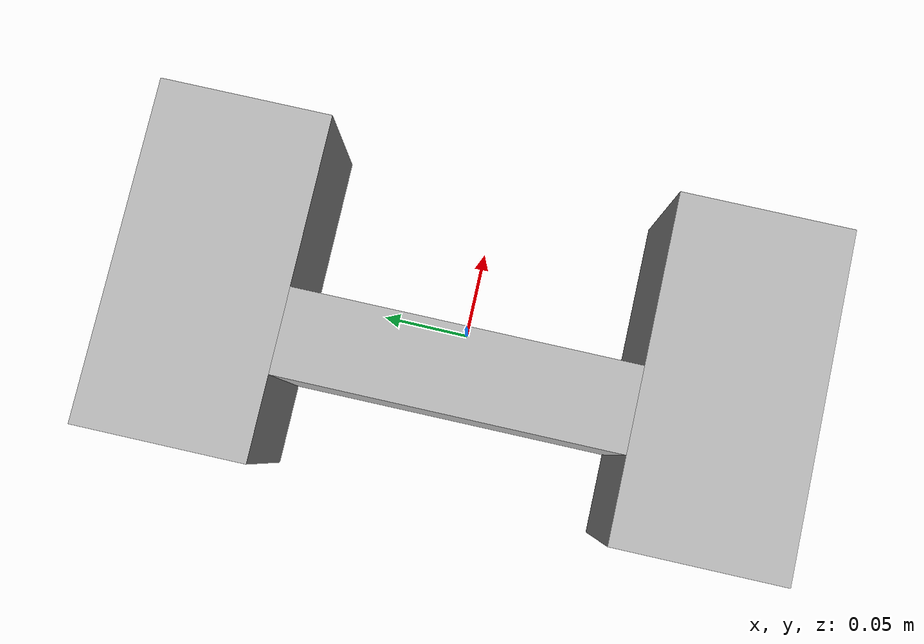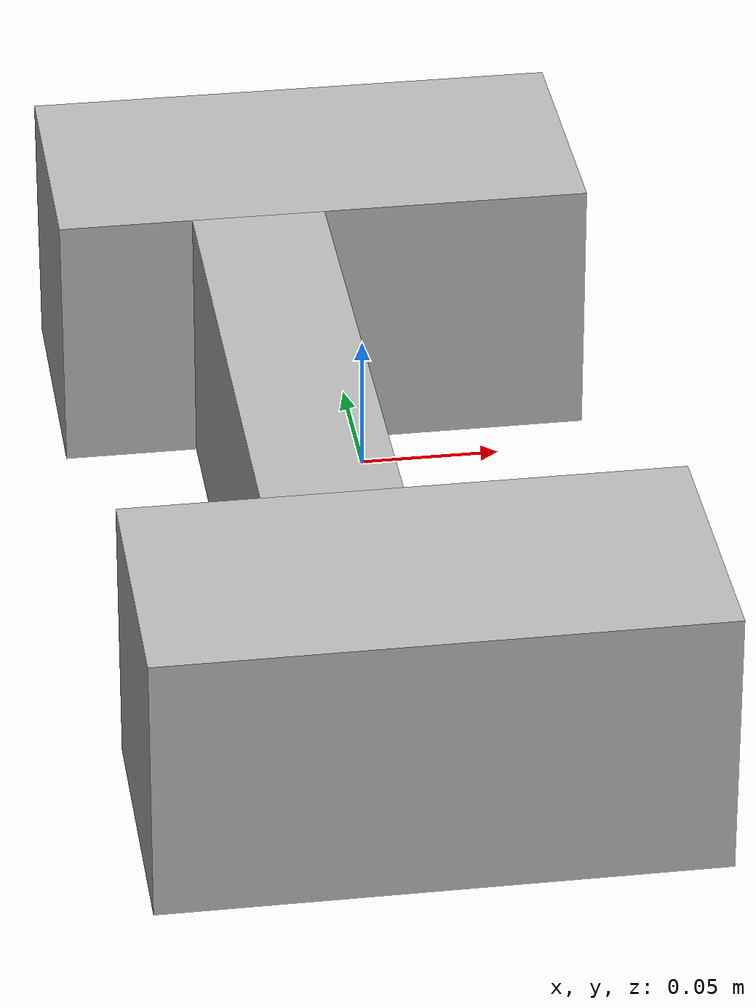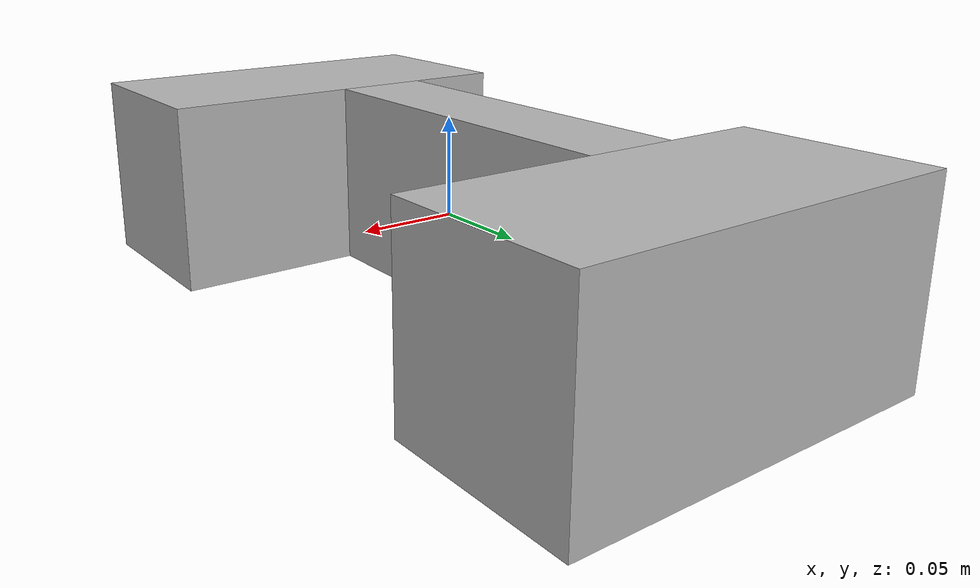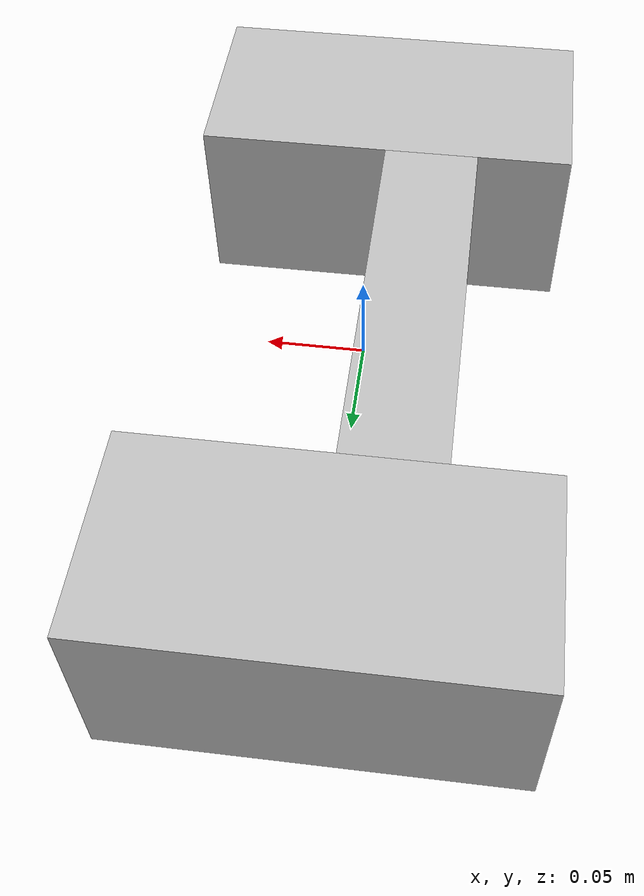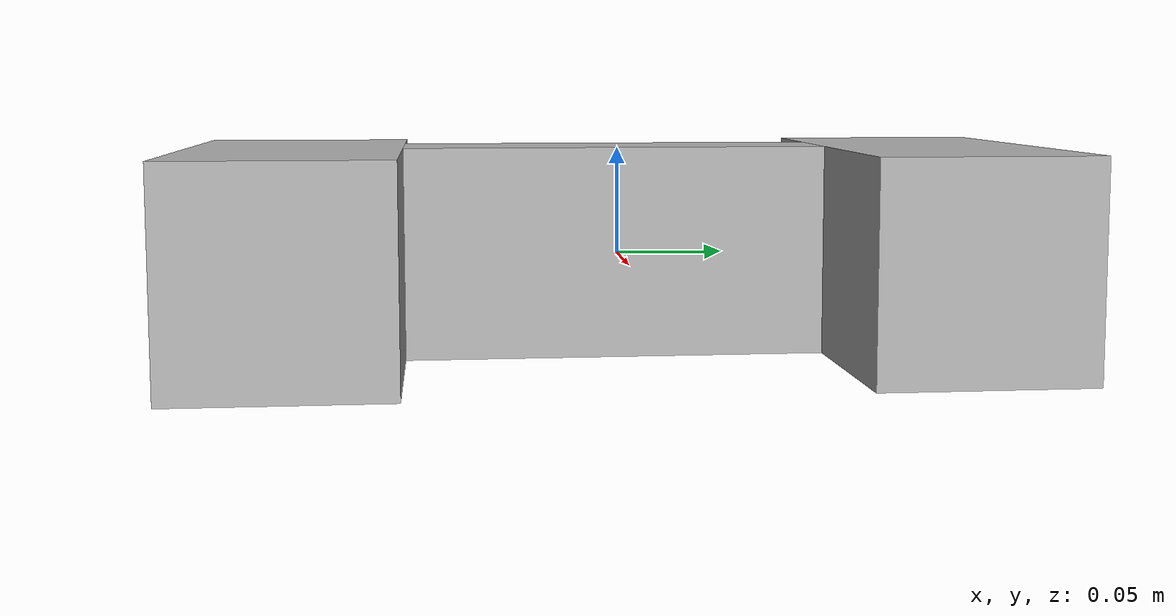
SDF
<?xml version="1.0" ?>
    <sdf version="1.5">
        <model name="camera">
            <pose>0 0 0 0 0 0</pose>

            <link name="Middel">
                <pose>-0.025 0 0 0 0 0</pose>
                <inertial>
                    <mass>0.8</mass>
                    <pose>0.025 0 0 0 0 0</pose>
                    <inertia>
                        <ixx>0.8</ixx>
                        <iyy>0.8</iyy>
                        <izz>0.8</izz>
                    </inertia>
                </inertial>
                <collision name="collision">
                <geometry>
                    <box>
                    <size>0.05 0.2 0.1</size>
                    </box>
                </geometry>
                </collision>
                <visual name="visual">
                <geometry>
                    <box>
                    <size>0.05 0.2 0.1</size>
                    </box>
                </geometry>
                </visual>

                <sensor name="camera_left" type="camera">
                <pose>0 0.15 0 0 0 0</pose>
                <topic>camera_left</topic>
                <camera>
                    <box_type>full_2d</box_type>
                    <horizontal_fov>1.047</horizontal_fov>
                    <image>
                    <width>800</width>
                    <height>600</height>
                    </image>
                    <clip>
                    <near>0.1</near>
                    <far>10</far>
                    </clip>
                    <save enabled="true">
                    <path>../tmp_files/stereo_left</path>
                    </save>
                    <distortion>
                    <k1>1</k1>
                    <k2>10</k2>
                    <k3>5</k3>
                    <p1>10</p1>
                    <p2>10</p2>
                    <center>0.5 0.5</center>
                    </distortion>
                    <lens>
                    <type>stereographic</type>
                    <scale_to_hfov>true</scale_to_hfov>
                    <cutoff_angle>1.5707963267948966</cutoff_angle>
                    <env_texture_size>256</env_texture_size>
                    </lens>
                </camera>
                <always_on>1</always_on>
                <update_rate>24</update_rate>
                <visualize>true</visualize>

                <plugin
                    filename="gz-sim-camera-video-recorder-system"
                    name="gz::sim::systems::CameraVideoRecorder">
                    <service>camera_left</service>
                    <use_sim_time>true</use_sim_time>
                    <fps>24</fps>
                </plugin>

                </sensor>

                <sensor name="camera_right" type="camera">
                <pose>0 -0.15 0 0 0 0</pose>
                <topic>camera_right</topic>
                <camera>
                    <box_type>full_2d</box_type>
                    <horizontal_fov>1.047</horizontal_fov>
                    <image>
                    <width>800</width>
                    <height>600</height>
                    </image>
                    <clip>
                    <near>0.1</near>
                    <far>10</far>
                    </clip>
                    <save enabled="true">
                    <path>../tmp_files/stereo_right</path>
                    </save>
                    <distortion>
                    <k1>1</k1>
                    <k2>10</k2>
                    <k3>5</k3>
                    <p1>10</p1>
                    <p2>10</p2>
                    <center>0.5 0.5</center>
                    </distortion>
                    <lens>
                    <type>stereographic</type>
                    <scale_to_hfov>true</scale_to_hfov>
                    <cutoff_angle>1.5707963267948966</cutoff_angle>
                    <env_texture_size>256</env_texture_size>
                    </lens>
                </camera>
                <always_on>1</always_on>
                <update_rate>24</update_rate>
                <visualize>true</visualize>

                <plugin
                    filename="gz-sim-camera-video-recorder-system"
                    name="gz::sim::systems::CameraVideoRecorder">
                    <service>camera_right</service>
                    <use_sim_time>true</use_sim_time>
                    <fps>24</fps>
                </plugin>

                </sensor>

            </link>

            <link name="Left">
                <pose>0 0.15 0 0 0 0</pose>
                <inertial>
                    <mass>0.1</mass>
                    <pose>0 -0.15 0 0 0 0</pose>
                    <inertia>
                        <ixx>0.1</ixx>
                        <iyy>0.1</iyy>
                        <izz>0.1</izz>
                    </inertia>
                </inertial>
                <collision name="collision">
                <geometry>
                    <box>
                    <size>0.2 0.1 0.1</size>
                    </box>
                </geometry>
                </collision>
                <visual name="visual">
                <geometry>
                    <box>
                    <size>0.2 0.1 0.1</size>
                    </box>
                </geometry>
                </visual>

            </link>

            <link name="Right">
                <pose>0 -0.15 0 0 0 0</pose>
                <inertial>
                    <mass>0.1</mass>
                    <pose>0 0.15 0 0 0 0</pose>
                    <inertia>
                        <ixx>0.1</ixx>
                        <iyy>0.1</iyy>
                        <izz>0.1</izz>
                    </inertia>
                </inertial>
                <collision name="collision">
                <geometry>
                    <box>
                    <size>0.2 0.1 0.1</size>
                    </box>
                </geometry>
                </collision>
                <visual name="visual">
                <geometry>
                    <box>
                    <size>0.2 0.1 0.1</size>
                    </box>
                </geometry>
                </visual>

            </link>

            <joint type="fixed" name="left_cam">
                <pose>0 0.15 0 0 0 0</pose>
                <parent>Middel</parent>
                <child>Left</child>
            </joint>

            <joint type="fixed" name="RIGHT_cam">
                <pose>0 -0.15 0 0 0 0</pose>
                <parent>Middel</parent>
                <child>Right</child>
            </joint>

            <plugin
                filename="Position_Control"
                name="gz::sim::v7::systems::PositionController">
                <timestep_precision>10</timestep_precision>
                <xyz_offset> 0 0 0</xyz_offset>
                <rpy_offset> 0 0 0</rpy_offset>
            </plugin>

            <plugin
                filename="Pose_To_File"
                name="gz::sim::v7::systems::PoseToFile">
            </plugin>
        </model>
    </sdf>
